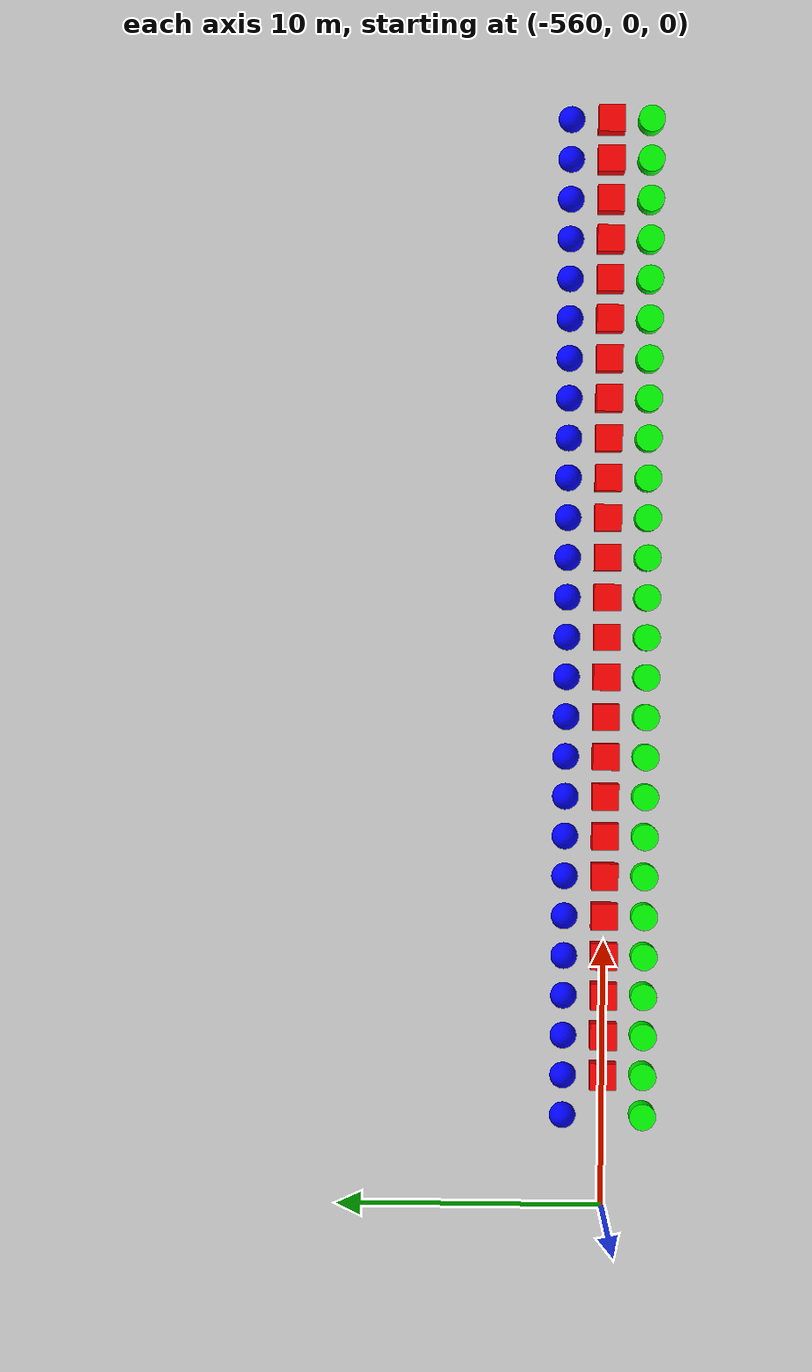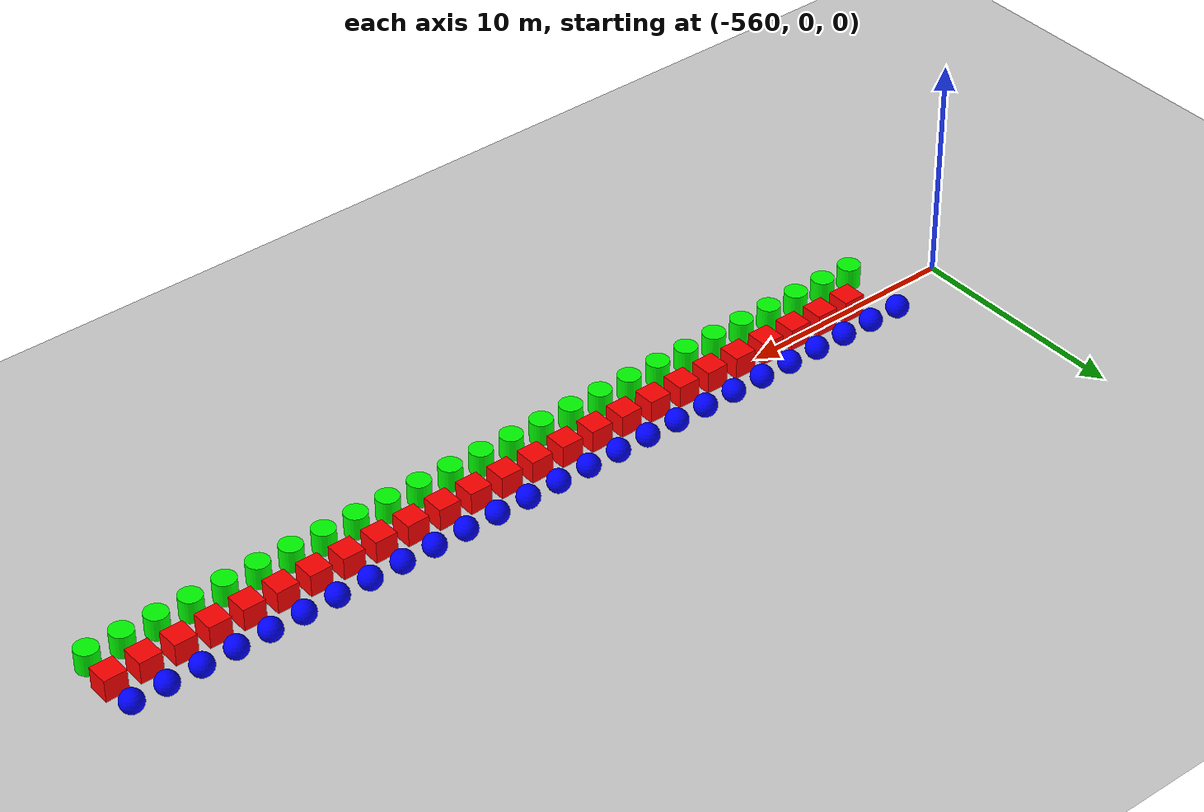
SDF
<sdf version="1.6">
 <world name="shapes">
  <model name="ground_plane">
   <static>true</static>
   <link name="link">
    <collision name="collision">
     <geometry><plane><normal>0 0 1</normal><size>100 100</size></plane></geometry>
    </collision>
    <visual name="visual">
     <geometry><plane><normal>0 0 1</normal><size>100 100</size></plane></geometry>
     <material>
      <ambient>0.8 0.8 0.8 1</ambient>
      <diffuse>0.8 0.8 0.8 1</diffuse>
      <specular>0.8 0.8 0.8 1</specular>
     </material>
    </visual>
   </link>
  </model>
  <model name="cylinder_129">
   <static>false</static>
   <pose>-556.5 -1.5 0.5 0 0 0</pose>
   <link name="cylinder_link">
    <inertial>
     <inertia><ixx>2</ixx><ixy>0</ixy><ixz>0</ixz><iyy>2</iyy><iyz>0</iyz><izz>2</izz></inertia>
     <mass>2.0</mass>
    </inertial>
    <collision name="cylinder_collision">
     <geometry><cylinder><radius>0.5</radius><length>1.0</length></cylinder></geometry>
    </collision>
    <visual name="cylinder_visual">
     <geometry><cylinder><radius>0.5</radius><length>1.0</length></cylinder></geometry>
     <material><ambient>0 1 0 1</ambient><diffuse>0 1 0 1</diffuse><specular>0 1 0 1</specular></material>
    </visual>
   </link>
  </model>
  <model name="sphere_129">
   <static>false</static>
   <pose>-556.5 1.5 0.5 0 0 0</pose>
   <link name="sphere_link">
    <inertial>
     <inertia><ixx>3</ixx><ixy>0</ixy><ixz>0</ixz><iyy>3</iyy><iyz>0</iyz><izz>3</izz></inertia>
     <mass>3.0</mass>
    </inertial>
    <collision name="sphere_collision"><geometry><sphere><radius>0.5</radius></sphere></geometry></collision>
    <visual name="sphere_visual">
     <geometry><sphere><radius>0.5</radius></sphere></geometry>
     <material><ambient>0 0 1 1</ambient><diffuse>0 0 1 1</diffuse><specular>0 0 1 1</specular></material>
    </visual>
   </link>
  </model>
  <model name="box_130">
   <static>false</static>
   <pose>-555.0 0 0.5 0 0 0</pose>
   <link name="box_link">
    <inertial>
     <inertia><ixx>1</ixx><ixy>0</ixy><ixz>0</ixz><iyy>1</iyy><iyz>0</iyz><izz>1</izz></inertia>
     <mass>1.0</mass>
    </inertial>
    <collision name="box_collision"><geometry><box><size>1 1 1</size></box></geometry></collision>
    <visual name="box_visual">
     <geometry><box><size>1 1 1</size></box></geometry>
     <material><ambient>1 0 0 1</ambient><diffuse>1 0 0 1</diffuse><specular>1 0 0 1</specular></material>
    </visual>
   </link>
  </model>
  <model name="cylinder_130">
   <static>false</static>
   <pose>-555.0 -1.5 0.5 0 0 0</pose>
   <link name="cylinder_link">
    <inertial>
     <inertia><ixx>2</ixx><ixy>0</ixy><ixz>0</ixz><iyy>2</iyy><iyz>0</iyz><izz>2</izz></inertia>
     <mass>2.0</mass>
    </inertial>
    <collision name="cylinder_collision">
     <geometry><cylinder><radius>0.5</radius><length>1.0</length></cylinder></geometry>
    </collision>
    <visual name="cylinder_visual">
     <geometry><cylinder><radius>0.5</radius><length>1.0</length></cylinder></geometry>
     <material><ambient>0 1 0 1</ambient><diffuse>0 1 0 1</diffuse><specular>0 1 0 1</specular></material>
    </visual>
   </link>
  </model>
  <model name="sphere_130">
   <static>false</static>
   <pose>-555.0 1.5 0.5 0 0 0</pose>
   <link name="sphere_link">
    <inertial>
     <inertia><ixx>3</ixx><ixy>0</ixy><ixz>0</ixz><iyy>3</iyy><iyz>0</iyz><izz>3</izz></inertia>
     <mass>3.0</mass>
    </inertial>
    <collision name="sphere_collision"><geometry><sphere><radius>0.5</radius></sphere></geometry></collision>
    <visual name="sphere_visual">
     <geometry><sphere><radius>0.5</radius></sphere></geometry>
     <material><ambient>0 0 1 1</ambient><diffuse>0 0 1 1</diffuse><specular>0 0 1 1</specular></material>
    </visual>
   </link>
  </model>
  <model name="box_131">
   <static>false</static>
   <pose>-553.5 0 0.5 0 0 0</pose>
   <link name="box_link">
    <inertial>
     <inertia><ixx>1</ixx><ixy>0</ixy><ixz>0</ixz><iyy>1</iyy><iyz>0</iyz><izz>1</izz></inertia>
     <mass>1.0</mass>
    </inertial>
    <collision name="box_collision"><geometry><box><size>1 1 1</size></box></geometry></collision>
    <visual name="box_visual">
     <geometry><box><size>1 1 1</size></box></geometry>
     <material><ambient>1 0 0 1</ambient><diffuse>1 0 0 1</diffuse><specular>1 0 0 1</specular></material>
    </visual>
   </link>
  </model>
  <model name="cylinder_131">
   <static>false</static>
   <pose>-553.5 -1.5 0.5 0 0 0</pose>
   <link name="cylinder_link">
    <inertial>
     <inertia><ixx>2</ixx><ixy>0</ixy><ixz>0</ixz><iyy>2</iyy><iyz>0</iyz><izz>2</izz></inertia>
     <mass>2.0</mass>
    </inertial>
    <collision name="cylinder_collision">
     <geometry><cylinder><radius>0.5</radius><length>1.0</length></cylinder></geometry>
    </collision>
    <visual name="cylinder_visual">
     <geometry><cylinder><radius>0.5</radius><length>1.0</length></cylinder></geometry>
     <material><ambient>0 1 0 1</ambient><diffuse>0 1 0 1</diffuse><specular>0 1 0 1</specular></material>
    </visual>
   </link>
  </model>
  <model name="sphere_131">
   <static>false</static>
   <pose>-553.5 1.5 0.5 0 0 0</pose>
   <link name="sphere_link">
    <inertial>
     <inertia><ixx>3</ixx><ixy>0</ixy><ixz>0</ixz><iyy>3</iyy><iyz>0</iyz><izz>3</izz></inertia>
     <mass>3.0</mass>
    </inertial>
    <collision name="sphere_collision"><geometry><sphere><radius>0.5</radius></sphere></geometry></collision>
    <visual name="sphere_visual">
     <geometry><sphere><radius>0.5</radius></sphere></geometry>
     <material><ambient>0 0 1 1</ambient><diffuse>0 0 1 1</diffuse><specular>0 0 1 1</specular></material>
    </visual>
   </link>
  </model>
  <model name="box_132">
   <static>false</static>
   <pose>-552.0 0 0.5 0 0 0</pose>
   <link name="box_link">
    <inertial>
     <inertia><ixx>1</ixx><ixy>0</ixy><ixz>0</ixz><iyy>1</iyy><iyz>0</iyz><izz>1</izz></inertia>
     <mass>1.0</mass>
    </inertial>
    <collision name="box_collision"><geometry><box><size>1 1 1</size></box></geometry></collision>
    <visual name="box_visual">
     <geometry><box><size>1 1 1</size></box></geometry>
     <material><ambient>1 0 0 1</ambient><diffuse>1 0 0 1</diffuse><specular>1 0 0 1</specular></material>
    </visual>
   </link>
  </model>
  <model name="cylinder_132">
   <static>false</static>
   <pose>-552.0 -1.5 0.5 0 0 0</pose>
   <link name="cylinder_link">
    <inertial>
     <inertia><ixx>2</ixx><ixy>0</ixy><ixz>0</ixz><iyy>2</iyy><iyz>0</iyz><izz>2</izz></inertia>
     <mass>2.0</mass>
    </inertial>
    <collision name="cylinder_collision">
     <geometry><cylinder><radius>0.5</radius><length>1.0</length></cylinder></geometry>
    </collision>
    <visual name="cylinder_visual">
     <geometry><cylinder><radius>0.5</radius><length>1.0</length></cylinder></geometry>
     <material><ambient>0 1 0 1</ambient><diffuse>0 1 0 1</diffuse><specular>0 1 0 1</specular></material>
    </visual>
   </link>
  </model>
  <model name="sphere_132">
   <static>false</static>
   <pose>-552.0 1.5 0.5 0 0 0</pose>
   <link name="sphere_link">
    <inertial>
     <inertia><ixx>3</ixx><ixy>0</ixy><ixz>0</ixz><iyy>3</iyy><iyz>0</iyz><izz>3</izz></inertia>
     <mass>3.0</mass>
    </inertial>
    <collision name="sphere_collision"><geometry><sphere><radius>0.5</radius></sphere></geometry></collision>
    <visual name="sphere_visual">
     <geometry><sphere><radius>0.5</radius></sphere></geometry>
     <material><ambient>0 0 1 1</ambient><diffuse>0 0 1 1</diffuse><specular>0 0 1 1</specular></material>
    </visual>
   </link>
  </model>
  <model name="box_133">
   <static>false</static>
   <pose>-550.5 0 0.5 0 0 0</pose>
   <link name="box_link">
    <inertial>
     <inertia><ixx>1</ixx><ixy>0</ixy><ixz>0</ixz><iyy>1</iyy><iyz>0</iyz><izz>1</izz></inertia>
     <mass>1.0</mass>
    </inertial>
    <collision name="box_collision"><geometry><box><size>1 1 1</size></box></geometry></collision>
    <visual name="box_visual">
     <geometry><box><size>1 1 1</size></box></geometry>
     <material><ambient>1 0 0 1</ambient><diffuse>1 0 0 1</diffuse><specular>1 0 0 1</specular></material>
    </visual>
   </link>
  </model>
  <model name="cylinder_133">
   <static>false</static>
   <pose>-550.5 -1.5 0.5 0 0 0</pose>
   <link name="cylinder_link">
    <inertial>
     <inertia><ixx>2</ixx><ixy>0</ixy><ixz>0</ixz><iyy>2</iyy><iyz>0</iyz><izz>2</izz></inertia>
     <mass>2.0</mass>
    </inertial>
    <collision name="cylinder_collision">
     <geometry><cylinder><radius>0.5</radius><length>1.0</length></cylinder></geometry>
    </collision>
    <visual name="cylinder_visual">
     <geometry><cylinder><radius>0.5</radius><length>1.0</length></cylinder></geometry>
     <material><ambient>0 1 0 1</ambient><diffuse>0 1 0 1</diffuse><specular>0 1 0 1</specular></material>
    </visual>
   </link>
  </model>
  <model name="sphere_133">
   <static>false</static>
   <pose>-550.5 1.5 0.5 0 0 0</pose>
   <link name="sphere_link">
    <inertial>
     <inertia><ixx>3</ixx><ixy>0</ixy><ixz>0</ixz><iyy>3</iyy><iyz>0</iyz><izz>3</izz></inertia>
     <mass>3.0</mass>
    </inertial>
    <collision name="sphere_collision"><geometry><sphere><radius>0.5</radius></sphere></geometry></collision>
    <visual name="sphere_visual">
     <geometry><sphere><radius>0.5</radius></sphere></geometry>
     <material><ambient>0 0 1 1</ambient><diffuse>0 0 1 1</diffuse><specular>0 0 1 1</specular></material>
    </visual>
   </link>
  </model>
  <model name="box_134">
   <static>false</static>
   <pose>-549.0 0 0.5 0 0 0</pose>
   <link name="box_link">
    <inertial>
     <inertia><ixx>1</ixx><ixy>0</ixy><ixz>0</ixz><iyy>1</iyy><iyz>0</iyz><izz>1</izz></inertia>
     <mass>1.0</mass>
    </inertial>
    <collision name="box_collision"><geometry><box><size>1 1 1</size></box></geometry></collision>
    <visual name="box_visual">
     <geometry><box><size>1 1 1</size></box></geometry>
     <material><ambient>1 0 0 1</ambient><diffuse>1 0 0 1</diffuse><specular>1 0 0 1</specular></material>
    </visual>
   </link>
  </model>
  <model name="cylinder_134">
   <static>false</static>
   <pose>-549.0 -1.5 0.5 0 0 0</pose>
   <link name="cylinder_link">
    <inertial>
     <inertia><ixx>2</ixx><ixy>0</ixy><ixz>0</ixz><iyy>2</iyy><iyz>0</iyz><izz>2</izz></inertia>
     <mass>2.0</mass>
    </inertial>
    <collision name="cylinder_collision">
     <geometry><cylinder><radius>0.5</radius><length>1.0</length></cylinder></geometry>
    </collision>
    <visual name="cylinder_visual">
     <geometry><cylinder><radius>0.5</radius><length>1.0</length></cylinder></geometry>
     <material><ambient>0 1 0 1</ambient><diffuse>0 1 0 1</diffuse><specular>0 1 0 1</specular></material>
    </visual>
   </link>
  </model>
  <model name="sphere_134">
   <static>false</static>
   <pose>-549.0 1.5 0.5 0 0 0</pose>
   <link name="sphere_link">
    <inertial>
     <inertia><ixx>3</ixx><ixy>0</ixy><ixz>0</ixz><iyy>3</iyy><iyz>0</iyz><izz>3</izz></inertia>
     <mass>3.0</mass>
    </inertial>
    <collision name="sphere_collision"><geometry><sphere><radius>0.5</radius></sphere></geometry></collision>
    <visual name="sphere_visual">
     <geometry><sphere><radius>0.5</radius></sphere></geometry>
     <material><ambient>0 0 1 1</ambient><diffuse>0 0 1 1</diffuse><specular>0 0 1 1</specular></material>
    </visual>
   </link>
  </model>
  <model name="box_135">
   <static>false</static>
   <pose>-547.5 0 0.5 0 0 0</pose>
   <link name="box_link">
    <inertial>
     <inertia><ixx>1</ixx><ixy>0</ixy><ixz>0</ixz><iyy>1</iyy><iyz>0</iyz><izz>1</izz></inertia>
     <mass>1.0</mass>
    </inertial>
    <collision name="box_collision"><geometry><box><size>1 1 1</size></box></geometry></collision>
    <visual name="box_visual">
     <geometry><box><size>1 1 1</size></box></geometry>
     <material><ambient>1 0 0 1</ambient><diffuse>1 0 0 1</diffuse><specular>1 0 0 1</specular></material>
    </visual>
   </link>
  </model>
  <model name="cylinder_135">
   <static>false</static>
   <pose>-547.5 -1.5 0.5 0 0 0</pose>
   <link name="cylinder_link">
    <inertial>
     <inertia><ixx>2</ixx><ixy>0</ixy><ixz>0</ixz><iyy>2</iyy><iyz>0</iyz><izz>2</izz></inertia>
     <mass>2.0</mass>
    </inertial>
    <collision name="cylinder_collision">
     <geometry><cylinder><radius>0.5</radius><length>1.0</length></cylinder></geometry>
    </collision>
    <visual name="cylinder_visual">
     <geometry><cylinder><radius>0.5</radius><length>1.0</length></cylinder></geometry>
     <material><ambient>0 1 0 1</ambient><diffuse>0 1 0 1</diffuse><specular>0 1 0 1</specular></material>
    </visual>
   </link>
  </model>
  <model name="sphere_135">
   <static>false</static>
   <pose>-547.5 1.5 0.5 0 0 0</pose>
   <link name="sphere_link">
    <inertial>
     <inertia><ixx>3</ixx><ixy>0</ixy><ixz>0</ixz><iyy>3</iyy><iyz>0</iyz><izz>3</izz></inertia>
     <mass>3.0</mass>
    </inertial>
    <collision name="sphere_collision"><geometry><sphere><radius>0.5</radius></sphere></geometry></collision>
    <visual name="sphere_visual">
     <geometry><sphere><radius>0.5</radius></sphere></geometry>
     <material><ambient>0 0 1 1</ambient><diffuse>0 0 1 1</diffuse><specular>0 0 1 1</specular></material>
    </visual>
   </link>
  </model>
  <model name="box_136">
   <static>false</static>
   <pose>-546.0 0 0.5 0 0 0</pose>
   <link name="box_link">
    <inertial>
     <inertia><ixx>1</ixx><ixy>0</ixy><ixz>0</ixz><iyy>1</iyy><iyz>0</iyz><izz>1</izz></inertia>
     <mass>1.0</mass>
    </inertial>
    <collision name="box_collision"><geometry><box><size>1 1 1</size></box></geometry></collision>
    <visual name="box_visual">
     <geometry><box><size>1 1 1</size></box></geometry>
     <material><ambient>1 0 0 1</ambient><diffuse>1 0 0 1</diffuse><specular>1 0 0 1</specular></material>
    </visual>
   </link>
  </model>
  <model name="cylinder_136">
   <static>false</static>
   <pose>-546.0 -1.5 0.5 0 0 0</pose>
   <link name="cylinder_link">
    <inertial>
     <inertia><ixx>2</ixx><ixy>0</ixy><ixz>0</ixz><iyy>2</iyy><iyz>0</iyz><izz>2</izz></inertia>
     <mass>2.0</mass>
    </inertial>
    <collision name="cylinder_collision">
     <geometry><cylinder><radius>0.5</radius><length>1.0</length></cylinder></geometry>
    </collision>
    <visual name="cylinder_visual">
     <geometry><cylinder><radius>0.5</radius><length>1.0</length></cylinder></geometry>
     <material><ambient>0 1 0 1</ambient><diffuse>0 1 0 1</diffuse><specular>0 1 0 1</specular></material>
    </visual>
   </link>
  </model>
  <model name="sphere_136">
   <static>false</static>
   <pose>-546.0 1.5 0.5 0 0 0</pose>
   <link name="sphere_link">
    <inertial>
     <inertia><ixx>3</ixx><ixy>0</ixy><ixz>0</ixz><iyy>3</iyy><iyz>0</iyz><izz>3</izz></inertia>
     <mass>3.0</mass>
    </inertial>
    <collision name="sphere_collision"><geometry><sphere><radius>0.5</radius></sphere></geometry></collision>
    <visual name="sphere_visual">
     <geometry><sphere><radius>0.5</radius></sphere></geometry>
     <material><ambient>0 0 1 1</ambient><diffuse>0 0 1 1</diffuse><specular>0 0 1 1</specular></material>
    </visual>
   </link>
  </model>
  <model name="box_137">
   <static>false</static>
   <pose>-544.5 0 0.5 0 0 0</pose>
   <link name="box_link">
    <inertial>
     <inertia><ixx>1</ixx><ixy>0</ixy><ixz>0</ixz><iyy>1</iyy><iyz>0</iyz><izz>1</izz></inertia>
     <mass>1.0</mass>
    </inertial>
    <collision name="box_collision"><geometry><box><size>1 1 1</size></box></geometry></collision>
    <visual name="box_visual">
     <geometry><box><size>1 1 1</size></box></geometry>
     <material><ambient>1 0 0 1</ambient><diffuse>1 0 0 1</diffuse><specular>1 0 0 1</specular></material>
    </visual>
   </link>
  </model>
  <model name="cylinder_137">
   <static>false</static>
   <pose>-544.5 -1.5 0.5 0 0 0</pose>
   <link name="cylinder_link">
    <inertial>
     <inertia><ixx>2</ixx><ixy>0</ixy><ixz>0</ixz><iyy>2</iyy><iyz>0</iyz><izz>2</izz></inertia>
     <mass>2.0</mass>
    </inertial>
    <collision name="cylinder_collision">
     <geometry><cylinder><radius>0.5</radius><length>1.0</length></cylinder></geometry>
    </collision>
    <visual name="cylinder_visual">
     <geometry><cylinder><radius>0.5</radius><length>1.0</length></cylinder></geometry>
     <material><ambient>0 1 0 1</ambient><diffuse>0 1 0 1</diffuse><specular>0 1 0 1</specular></material>
    </visual>
   </link>
  </model>
  <model name="sphere_137">
   <static>false</static>
   <pose>-544.5 1.5 0.5 0 0 0</pose>
   <link name="sphere_link">
    <inertial>
     <inertia><ixx>3</ixx><ixy>0</ixy><ixz>0</ixz><iyy>3</iyy><iyz>0</iyz><izz>3</izz></inertia>
     <mass>3.0</mass>
    </inertial>
    <collision name="sphere_collision"><geometry><sphere><radius>0.5</radius></sphere></geometry></collision>
    <visual name="sphere_visual">
     <geometry><sphere><radius>0.5</radius></sphere></geometry>
     <material><ambient>0 0 1 1</ambient><diffuse>0 0 1 1</diffuse><specular>0 0 1 1</specular></material>
    </visual>
   </link>
  </model>
  <model name="box_138">
   <static>false</static>
   <pose>-543.0 0 0.5 0 0 0</pose>
   <link name="box_link">
    <inertial>
     <inertia><ixx>1</ixx><ixy>0</ixy><ixz>0</ixz><iyy>1</iyy><iyz>0</iyz><izz>1</izz></inertia>
     <mass>1.0</mass>
    </inertial>
    <collision name="box_collision"><geometry><box><size>1 1 1</size></box></geometry></collision>
    <visual name="box_visual">
     <geometry><box><size>1 1 1</size></box></geometry>
     <material><ambient>1 0 0 1</ambient><diffuse>1 0 0 1</diffuse><specular>1 0 0 1</specular></material>
    </visual>
   </link>
  </model>
  <model name="cylinder_138">
   <static>false</static>
   <pose>-543.0 -1.5 0.5 0 0 0</pose>
   <link name="cylinder_link">
    <inertial>
     <inertia><ixx>2</ixx><ixy>0</ixy><ixz>0</ixz><iyy>2</iyy><iyz>0</iyz><izz>2</izz></inertia>
     <mass>2.0</mass>
    </inertial>
    <collision name="cylinder_collision">
     <geometry><cylinder><radius>0.5</radius><length>1.0</length></cylinder></geometry>
    </collision>
    <visual name="cylinder_visual">
     <geometry><cylinder><radius>0.5</radius><length>1.0</length></cylinder></geometry>
     <material><ambient>0 1 0 1</ambient><diffuse>0 1 0 1</diffuse><specular>0 1 0 1</specular></material>
    </visual>
   </link>
  </model>
  <model name="sphere_138">
   <static>false</static>
   <pose>-543.0 1.5 0.5 0 0 0</pose>
   <link name="sphere_link">
    <inertial>
     <inertia><ixx>3</ixx><ixy>0</ixy><ixz>0</ixz><iyy>3</iyy><iyz>0</iyz><izz>3</izz></inertia>
     <mass>3.0</mass>
    </inertial>
    <collision name="sphere_collision"><geometry><sphere><radius>0.5</radius></sphere></geometry></collision>
    <visual name="sphere_visual">
     <geometry><sphere><radius>0.5</radius></sphere></geometry>
     <material><ambient>0 0 1 1</ambient><diffuse>0 0 1 1</diffuse><specular>0 0 1 1</specular></material>
    </visual>
   </link>
  </model>
  <model name="box_139">
   <static>false</static>
   <pose>-541.5 0 0.5 0 0 0</pose>
   <link name="box_link">
    <inertial>
     <inertia><ixx>1</ixx><ixy>0</ixy><ixz>0</ixz><iyy>1</iyy><iyz>0</iyz><izz>1</izz></inertia>
     <mass>1.0</mass>
    </inertial>
    <collision name="box_collision"><geometry><box><size>1 1 1</size></box></geometry></collision>
    <visual name="box_visual">
     <geometry><box><size>1 1 1</size></box></geometry>
     <material><ambient>1 0 0 1</ambient><diffuse>1 0 0 1</diffuse><specular>1 0 0 1</specular></material>
    </visual>
   </link>
  </model>
  <model name="cylinder_139">
   <static>false</static>
   <pose>-541.5 -1.5 0.5 0 0 0</pose>
   <link name="cylinder_link">
    <inertial>
     <inertia><ixx>2</ixx><ixy>0</ixy><ixz>0</ixz><iyy>2</iyy><iyz>0</iyz><izz>2</izz></inertia>
     <mass>2.0</mass>
    </inertial>
    <collision name="cylinder_collision">
     <geometry><cylinder><radius>0.5</radius><length>1.0</length></cylinder></geometry>
    </collision>
    <visual name="cylinder_visual">
     <geometry><cylinder><radius>0.5</radius><length>1.0</length></cylinder></geometry>
     <material><ambient>0 1 0 1</ambient><diffuse>0 1 0 1</diffuse><specular>0 1 0 1</specular></material>
    </visual>
   </link>
  </model>
  <model name="sphere_139">
   <static>false</static>
   <pose>-541.5 1.5 0.5 0 0 0</pose>
   <link name="sphere_link">
    <inertial>
     <inertia><ixx>3</ixx><ixy>0</ixy><ixz>0</ixz><iyy>3</iyy><iyz>0</iyz><izz>3</izz></inertia>
     <mass>3.0</mass>
    </inertial>
    <collision name="sphere_collision"><geometry><sphere><radius>0.5</radius></sphere></geometry></collision>
    <visual name="sphere_visual">
     <geometry><sphere><radius>0.5</radius></sphere></geometry>
     <material><ambient>0 0 1 1</ambient><diffuse>0 0 1 1</diffuse><specular>0 0 1 1</specular></material>
    </visual>
   </link>
  </model>
  <model name="box_140">
   <static>false</static>
   <pose>-540.0 0 0.5 0 0 0</pose>
   <link name="box_link">
    <inertial>
     <inertia><ixx>1</ixx><ixy>0</ixy><ixz>0</ixz><iyy>1</iyy><iyz>0</iyz><izz>1</izz></inertia>
     <mass>1.0</mass>
    </inertial>
    <collision name="box_collision"><geometry><box><size>1 1 1</size></box></geometry></collision>
    <visual name="box_visual">
     <geometry><box><size>1 1 1</size></box></geometry>
     <material><ambient>1 0 0 1</ambient><diffuse>1 0 0 1</diffuse><specular>1 0 0 1</specular></material>
    </visual>
   </link>
  </model>
  <model name="cylinder_140">
   <static>false</static>
   <pose>-540.0 -1.5 0.5 0 0 0</pose>
   <link name="cylinder_link">
    <inertial>
     <inertia><ixx>2</ixx><ixy>0</ixy><ixz>0</ixz><iyy>2</iyy><iyz>0</iyz><izz>2</izz></inertia>
     <mass>2.0</mass>
    </inertial>
    <collision name="cylinder_collision">
     <geometry><cylinder><radius>0.5</radius><length>1.0</length></cylinder></geometry>
    </collision>
    <visual name="cylinder_visual">
     <geometry><cylinder><radius>0.5</radius><length>1.0</length></cylinder></geometry>
     <material><ambient>0 1 0 1</ambient><diffuse>0 1 0 1</diffuse><specular>0 1 0 1</specular></material>
    </visual>
   </link>
  </model>
  <model name="sphere_140">
   <static>false</static>
   <pose>-540.0 1.5 0.5 0 0 0</pose>
   <link name="sphere_link">
    <inertial>
     <inertia><ixx>3</ixx><ixy>0</ixy><ixz>0</ixz><iyy>3</iyy><iyz>0</iyz><izz>3</izz></inertia>
     <mass>3.0</mass>
    </inertial>
    <collision name="sphere_collision"><geometry><sphere><radius>0.5</radius></sphere></geometry></collision>
    <visual name="sphere_visual">
     <geometry><sphere><radius>0.5</radius></sphere></geometry>
     <material><ambient>0 0 1 1</ambient><diffuse>0 0 1 1</diffuse><specular>0 0 1 1</specular></material>
    </visual>
   </link>
  </model>
  <model name="box_141">
   <static>false</static>
   <pose>-538.5 0 0.5 0 0 0</pose>
   <link name="box_link">
    <inertial>
     <inertia><ixx>1</ixx><ixy>0</ixy><ixz>0</ixz><iyy>1</iyy><iyz>0</iyz><izz>1</izz></inertia>
     <mass>1.0</mass>
    </inertial>
    <collision name="box_collision"><geometry><box><size>1 1 1</size></box></geometry></collision>
    <visual name="box_visual">
     <geometry><box><size>1 1 1</size></box></geometry>
     <material><ambient>1 0 0 1</ambient><diffuse>1 0 0 1</diffuse><specular>1 0 0 1</specular></material>
    </visual>
   </link>
  </model>
  <model name="cylinder_141">
   <static>false</static>
   <pose>-538.5 -1.5 0.5 0 0 0</pose>
   <link name="cylinder_link">
    <inertial>
     <inertia><ixx>2</ixx><ixy>0</ixy><ixz>0</ixz><iyy>2</iyy><iyz>0</iyz><izz>2</izz></inertia>
     <mass>2.0</mass>
    </inertial>
    <collision name="cylinder_collision">
     <geometry><cylinder><radius>0.5</radius><length>1.0</length></cylinder></geometry>
    </collision>
    <visual name="cylinder_visual">
     <geometry><cylinder><radius>0.5</radius><length>1.0</length></cylinder></geometry>
     <material><ambient>0 1 0 1</ambient><diffuse>0 1 0 1</diffuse><specular>0 1 0 1</specular></material>
    </visual>
   </link>
  </model>
  <model name="sphere_141">
   <static>false</static>
   <pose>-538.5 1.5 0.5 0 0 0</pose>
   <link name="sphere_link">
    <inertial>
     <inertia><ixx>3</ixx><ixy>0</ixy><ixz>0</ixz><iyy>3</iyy><iyz>0</iyz><izz>3</izz></inertia>
     <mass>3.0</mass>
    </inertial>
    <collision name="sphere_collision"><geometry><sphere><radius>0.5</radius></sphere></geometry></collision>
    <visual name="sphere_visual">
     <geometry><sphere><radius>0.5</radius></sphere></geometry>
     <material><ambient>0 0 1 1</ambient><diffuse>0 0 1 1</diffuse><specular>0 0 1 1</specular></material>
    </visual>
   </link>
  </model>
  <model name="box_142">
   <static>false</static>
   <pose>-537.0 0 0.5 0 0 0</pose>
   <link name="box_link">
    <inertial>
     <inertia><ixx>1</ixx><ixy>0</ixy><ixz>0</ixz><iyy>1</iyy><iyz>0</iyz><izz>1</izz></inertia>
     <mass>1.0</mass>
    </inertial>
    <collision name="box_collision"><geometry><box><size>1 1 1</size></box></geometry></collision>
    <visual name="box_visual">
     <geometry><box><size>1 1 1</size></box></geometry>
     <material><ambient>1 0 0 1</ambient><diffuse>1 0 0 1</diffuse><specular>1 0 0 1</specular></material>
    </visual>
   </link>
  </model>
  <model name="cylinder_142">
   <static>false</static>
   <pose>-537.0 -1.5 0.5 0 0 0</pose>
   <link name="cylinder_link">
    <inertial>
     <inertia><ixx>2</ixx><ixy>0</ixy><ixz>0</ixz><iyy>2</iyy><iyz>0</iyz><izz>2</izz></inertia>
     <mass>2.0</mass>
    </inertial>
    <collision name="cylinder_collision">
     <geometry><cylinder><radius>0.5</radius><length>1.0</length></cylinder></geometry>
    </collision>
    <visual name="cylinder_visual">
     <geometry><cylinder><radius>0.5</radius><length>1.0</length></cylinder></geometry>
     <material><ambient>0 1 0 1</ambient><diffuse>0 1 0 1</diffuse><specular>0 1 0 1</specular></material>
    </visual>
   </link>
  </model>
  <model name="sphere_142">
   <static>false</static>
   <pose>-537.0 1.5 0.5 0 0 0</pose>
   <link name="sphere_link">
    <inertial>
     <inertia><ixx>3</ixx><ixy>0</ixy><ixz>0</ixz><iyy>3</iyy><iyz>0</iyz><izz>3</izz></inertia>
     <mass>3.0</mass>
    </inertial>
    <collision name="sphere_collision"><geometry><sphere><radius>0.5</radius></sphere></geometry></collision>
    <visual name="sphere_visual">
     <geometry><sphere><radius>0.5</radius></sphere></geometry>
     <material><ambient>0 0 1 1</ambient><diffuse>0 0 1 1</diffuse><specular>0 0 1 1</specular></material>
    </visual>
   </link>
  </model>
  <model name="box_143">
   <static>false</static>
   <pose>-535.5 0 0.5 0 0 0</pose>
   <link name="box_link">
    <inertial>
     <inertia><ixx>1</ixx><ixy>0</ixy><ixz>0</ixz><iyy>1</iyy><iyz>0</iyz><izz>1</izz></inertia>
     <mass>1.0</mass>
    </inertial>
    <collision name="box_collision"><geometry><box><size>1 1 1</size></box></geometry></collision>
    <visual name="box_visual">
     <geometry><box><size>1 1 1</size></box></geometry>
     <material><ambient>1 0 0 1</ambient><diffuse>1 0 0 1</diffuse><specular>1 0 0 1</specular></material>
    </visual>
   </link>
  </model>
  <model name="cylinder_143">
   <static>false</static>
   <pose>-535.5 -1.5 0.5 0 0 0</pose>
   <link name="cylinder_link">
    <inertial>
     <inertia><ixx>2</ixx><ixy>0</ixy><ixz>0</ixz><iyy>2</iyy><iyz>0</iyz><izz>2</izz></inertia>
     <mass>2.0</mass>
    </inertial>
    <collision name="cylinder_collision">
     <geometry><cylinder><radius>0.5</radius><length>1.0</length></cylinder></geometry>
    </collision>
    <visual name="cylinder_visual">
     <geometry><cylinder><radius>0.5</radius><length>1.0</length></cylinder></geometry>
     <material><ambient>0 1 0 1</ambient><diffuse>0 1 0 1</diffuse><specular>0 1 0 1</specular></material>
    </visual>
   </link>
  </model>
  <model name="sphere_143">
   <static>false</static>
   <pose>-535.5 1.5 0.5 0 0 0</pose>
   <link name="sphere_link">
    <inertial>
     <inertia><ixx>3</ixx><ixy>0</ixy><ixz>0</ixz><iyy>3</iyy><iyz>0</iyz><izz>3</izz></inertia>
     <mass>3.0</mass>
    </inertial>
    <collision name="sphere_collision"><geometry><sphere><radius>0.5</radius></sphere></geometry></collision>
    <visual name="sphere_visual">
     <geometry><sphere><radius>0.5</radius></sphere></geometry>
     <material><ambient>0 0 1 1</ambient><diffuse>0 0 1 1</diffuse><specular>0 0 1 1</specular></material>
    </visual>
   </link>
  </model>
  <model name="box_144">
   <static>false</static>
   <pose>-534.0 0 0.5 0 0 0</pose>
   <link name="box_link">
    <inertial>
     <inertia><ixx>1</ixx><ixy>0</ixy><ixz>0</ixz><iyy>1</iyy><iyz>0</iyz><izz>1</izz></inertia>
     <mass>1.0</mass>
    </inertial>
    <collision name="box_collision"><geometry><box><size>1 1 1</size></box></geometry></collision>
    <visual name="box_visual">
     <geometry><box><size>1 1 1</size></box></geometry>
     <material><ambient>1 0 0 1</ambient><diffuse>1 0 0 1</diffuse><specular>1 0 0 1</specular></material>
    </visual>
   </link>
  </model>
  <model name="cylinder_144">
   <static>false</static>
   <pose>-534.0 -1.5 0.5 0 0 0</pose>
   <link name="cylinder_link">
    <inertial>
     <inertia><ixx>2</ixx><ixy>0</ixy><ixz>0</ixz><iyy>2</iyy><iyz>0</iyz><izz>2</izz></inertia>
     <mass>2.0</mass>
    </inertial>
    <collision name="cylinder_collision">
     <geometry><cylinder><radius>0.5</radius><length>1.0</length></cylinder></geometry>
    </collision>
    <visual name="cylinder_visual">
     <geometry><cylinder><radius>0.5</radius><length>1.0</length></cylinder></geometry>
     <material><ambient>0 1 0 1</ambient><diffuse>0 1 0 1</diffuse><specular>0 1 0 1</specular></material>
    </visual>
   </link>
  </model>
  <model name="sphere_144">
   <static>false</static>
   <pose>-534.0 1.5 0.5 0 0 0</pose>
   <link name="sphere_link">
    <inertial>
     <inertia><ixx>3</ixx><ixy>0</ixy><ixz>0</ixz><iyy>3</iyy><iyz>0</iyz><izz>3</izz></inertia>
     <mass>3.0</mass>
    </inertial>
    <collision name="sphere_collision"><geometry><sphere><radius>0.5</radius></sphere></geometry></collision>
    <visual name="sphere_visual">
     <geometry><sphere><radius>0.5</radius></sphere></geometry>
     <material><ambient>0 0 1 1</ambient><diffuse>0 0 1 1</diffuse><specular>0 0 1 1</specular></material>
    </visual>
   </link>
  </model>
  <model name="box_145">
   <static>false</static>
   <pose>-532.5 0 0.5 0 0 0</pose>
   <link name="box_link">
    <inertial>
     <inertia><ixx>1</ixx><ixy>0</ixy><ixz>0</ixz><iyy>1</iyy><iyz>0</iyz><izz>1</izz></inertia>
     <mass>1.0</mass>
    </inertial>
    <collision name="box_collision"><geometry><box><size>1 1 1</size></box></geometry></collision>
    <visual name="box_visual">
     <geometry><box><size>1 1 1</size></box></geometry>
     <material><ambient>1 0 0 1</ambient><diffuse>1 0 0 1</diffuse><specular>1 0 0 1</specular></material>
    </visual>
   </link>
  </model>
  <model name="cylinder_145">
   <static>false</static>
   <pose>-532.5 -1.5 0.5 0 0 0</pose>
   <link name="cylinder_link">
    <inertial>
     <inertia><ixx>2</ixx><ixy>0</ixy><ixz>0</ixz><iyy>2</iyy><iyz>0</iyz><izz>2</izz></inertia>
     <mass>2.0</mass>
    </inertial>
    <collision name="cylinder_collision">
     <geometry><cylinder><radius>0.5</radius><length>1.0</length></cylinder></geometry>
    </collision>
    <visual name="cylinder_visual">
     <geometry><cylinder><radius>0.5</radius><length>1.0</length></cylinder></geometry>
     <material><ambient>0 1 0 1</ambient><diffuse>0 1 0 1</diffuse><specular>0 1 0 1</specular></material>
    </visual>
   </link>
  </model>
  <model name="sphere_145">
   <static>false</static>
   <pose>-532.5 1.5 0.5 0 0 0</pose>
   <link name="sphere_link">
    <inertial>
     <inertia><ixx>3</ixx><ixy>0</ixy><ixz>0</ixz><iyy>3</iyy><iyz>0</iyz><izz>3</izz></inertia>
     <mass>3.0</mass>
    </inertial>
    <collision name="sphere_collision"><geometry><sphere><radius>0.5</radius></sphere></geometry></collision>
    <visual name="sphere_visual">
     <geometry><sphere><radius>0.5</radius></sphere></geometry>
     <material><ambient>0 0 1 1</ambient><diffuse>0 0 1 1</diffuse><specular>0 0 1 1</specular></material>
    </visual>
   </link>
  </model>
  <model name="box_146">
   <static>false</static>
   <pose>-531.0 0 0.5 0 0 0</pose>
   <link name="box_link">
    <inertial>
     <inertia><ixx>1</ixx><ixy>0</ixy><ixz>0</ixz><iyy>1</iyy><iyz>0</iyz><izz>1</izz></inertia>
     <mass>1.0</mass>
    </inertial>
    <collision name="box_collision"><geometry><box><size>1 1 1</size></box></geometry></collision>
    <visual name="box_visual">
     <geometry><box><size>1 1 1</size></box></geometry>
     <material><ambient>1 0 0 1</ambient><diffuse>1 0 0 1</diffuse><specular>1 0 0 1</specular></material>
    </visual>
   </link>
  </model>
  <model name="cylinder_146">
   <static>false</static>
   <pose>-531.0 -1.5 0.5 0 0 0</pose>
   <link name="cylinder_link">
    <inertial>
     <inertia><ixx>2</ixx><ixy>0</ixy><ixz>0</ixz><iyy>2</iyy><iyz>0</iyz><izz>2</izz></inertia>
     <mass>2.0</mass>
    </inertial>
    <collision name="cylinder_collision">
     <geometry><cylinder><radius>0.5</radius><length>1.0</length></cylinder></geometry>
    </collision>
    <visual name="cylinder_visual">
     <geometry><cylinder><radius>0.5</radius><length>1.0</length></cylinder></geometry>
     <material><ambient>0 1 0 1</ambient><diffuse>0 1 0 1</diffuse><specular>0 1 0 1</specular></material>
    </visual>
   </link>
  </model>
  <model name="sphere_146">
   <static>false</static>
   <pose>-531.0 1.5 0.5 0 0 0</pose>
   <link name="sphere_link">
    <inertial>
     <inertia><ixx>3</ixx><ixy>0</ixy><ixz>0</ixz><iyy>3</iyy><iyz>0</iyz><izz>3</izz></inertia>
     <mass>3.0</mass>
    </inertial>
    <collision name="sphere_collision"><geometry><sphere><radius>0.5</radius></sphere></geometry></collision>
    <visual name="sphere_visual">
     <geometry><sphere><radius>0.5</radius></sphere></geometry>
     <material><ambient>0 0 1 1</ambient><diffuse>0 0 1 1</diffuse><specular>0 0 1 1</specular></material>
    </visual>
   </link>
  </model>
  <model name="box_147">
   <static>false</static>
   <pose>-529.5 0 0.5 0 0 0</pose>
   <link name="box_link">
    <inertial>
     <inertia><ixx>1</ixx><ixy>0</ixy><ixz>0</ixz><iyy>1</iyy><iyz>0</iyz><izz>1</izz></inertia>
     <mass>1.0</mass>
    </inertial>
    <collision name="box_collision"><geometry><box><size>1 1 1</size></box></geometry></collision>
    <visual name="box_visual">
     <geometry><box><size>1 1 1</size></box></geometry>
     <material><ambient>1 0 0 1</ambient><diffuse>1 0 0 1</diffuse><specular>1 0 0 1</specular></material>
    </visual>
   </link>
  </model>
  <model name="cylinder_147">
   <static>false</static>
   <pose>-529.5 -1.5 0.5 0 0 0</pose>
   <link name="cylinder_link">
    <inertial>
     <inertia><ixx>2</ixx><ixy>0</ixy><ixz>0</ixz><iyy>2</iyy><iyz>0</iyz><izz>2</izz></inertia>
     <mass>2.0</mass>
    </inertial>
    <collision name="cylinder_collision">
     <geometry><cylinder><radius>0.5</radius><length>1.0</length></cylinder></geometry>
    </collision>
    <visual name="cylinder_visual">
     <geometry><cylinder><radius>0.5</radius><length>1.0</length></cylinder></geometry>
     <material><ambient>0 1 0 1</ambient><diffuse>0 1 0 1</diffuse><specular>0 1 0 1</specular></material>
    </visual>
   </link>
  </model>
  <model name="sphere_147">
   <static>false</static>
   <pose>-529.5 1.5 0.5 0 0 0</pose>
   <link name="sphere_link">
    <inertial>
     <inertia><ixx>3</ixx><ixy>0</ixy><ixz>0</ixz><iyy>3</iyy><iyz>0</iyz><izz>3</izz></inertia>
     <mass>3.0</mass>
    </inertial>
    <collision name="sphere_collision"><geometry><sphere><radius>0.5</radius></sphere></geometry></collision>
    <visual name="sphere_visual">
     <geometry><sphere><radius>0.5</radius></sphere></geometry>
     <material><ambient>0 0 1 1</ambient><diffuse>0 0 1 1</diffuse><specular>0 0 1 1</specular></material>
    </visual>
   </link>
  </model>
  <model name="box_148">
   <static>false</static>
   <pose>-528.0 0 0.5 0 0 0</pose>
   <link name="box_link">
    <inertial>
     <inertia><ixx>1</ixx><ixy>0</ixy><ixz>0</ixz><iyy>1</iyy><iyz>0</iyz><izz>1</izz></inertia>
     <mass>1.0</mass>
    </inertial>
    <collision name="box_collision"><geometry><box><size>1 1 1</size></box></geometry></collision>
    <visual name="box_visual">
     <geometry><box><size>1 1 1</size></box></geometry>
     <material><ambient>1 0 0 1</ambient><diffuse>1 0 0 1</diffuse><specular>1 0 0 1</specular></material>
    </visual>
   </link>
  </model>
  <model name="cylinder_148">
   <static>false</static>
   <pose>-528.0 -1.5 0.5 0 0 0</pose>
   <link name="cylinder_link">
    <inertial>
     <inertia><ixx>2</ixx><ixy>0</ixy><ixz>0</ixz><iyy>2</iyy><iyz>0</iyz><izz>2</izz></inertia>
     <mass>2.0</mass>
    </inertial>
    <collision name="cylinder_collision">
     <geometry><cylinder><radius>0.5</radius><length>1.0</length></cylinder></geometry>
    </collision>
    <visual name="cylinder_visual">
     <geometry><cylinder><radius>0.5</radius><length>1.0</length></cylinder></geometry>
     <material><ambient>0 1 0 1</ambient><diffuse>0 1 0 1</diffuse><specular>0 1 0 1</specular></material>
    </visual>
   </link>
  </model>
  <model name="sphere_148">
   <static>false</static>
   <pose>-528.0 1.5 0.5 0 0 0</pose>
   <link name="sphere_link">
    <inertial>
     <inertia><ixx>3</ixx><ixy>0</ixy><ixz>0</ixz><iyy>3</iyy><iyz>0</iyz><izz>3</izz></inertia>
     <mass>3.0</mass>
    </inertial>
    <collision name="sphere_collision"><geometry><sphere><radius>0.5</radius></sphere></geometry></collision>
    <visual name="sphere_visual">
     <geometry><sphere><radius>0.5</radius></sphere></geometry>
     <material><ambient>0 0 1 1</ambient><diffuse>0 0 1 1</diffuse><specular>0 0 1 1</specular></material>
    </visual>
   </link>
  </model>
  <model name="box_149">
   <static>false</static>
   <pose>-526.5 0 0.5 0 0 0</pose>
   <link name="box_link">
    <inertial>
     <inertia><ixx>1</ixx><ixy>0</ixy><ixz>0</ixz><iyy>1</iyy><iyz>0</iyz><izz>1</izz></inertia>
     <mass>1.0</mass>
    </inertial>
    <collision name="box_collision"><geometry><box><size>1 1 1</size></box></geometry></collision>
    <visual name="box_visual">
     <geometry><box><size>1 1 1</size></box></geometry>
     <material><ambient>1 0 0 1</ambient><diffuse>1 0 0 1</diffuse><specular>1 0 0 1</specular></material>
    </visual>
   </link>
  </model>
  <model name="cylinder_149">
   <static>false</static>
   <pose>-526.5 -1.5 0.5 0 0 0</pose>
   <link name="cylinder_link">
    <inertial>
     <inertia><ixx>2</ixx><ixy>0</ixy><ixz>0</ixz><iyy>2</iyy><iyz>0</iyz><izz>2</izz></inertia>
     <mass>2.0</mass>
    </inertial>
    <collision name="cylinder_collision">
     <geometry><cylinder><radius>0.5</radius><length>1.0</length></cylinder></geometry>
    </collision>
    <visual name="cylinder_visual">
     <geometry><cylinder><radius>0.5</radius><length>1.0</length></cylinder></geometry>
     <material><ambient>0 1 0 1</ambient><diffuse>0 1 0 1</diffuse><specular>0 1 0 1</specular></material>
    </visual>
   </link>
  </model>
  <model name="sphere_149">
   <static>false</static>
   <pose>-526.5 1.5 0.5 0 0 0</pose>
   <link name="sphere_link">
    <inertial>
     <inertia><ixx>3</ixx><ixy>0</ixy><ixz>0</ixz><iyy>3</iyy><iyz>0</iyz><izz>3</izz></inertia>
     <mass>3.0</mass>
    </inertial>
    <collision name="sphere_collision"><geometry><sphere><radius>0.5</radius></sphere></geometry></collision>
    <visual name="sphere_visual">
     <geometry><sphere><radius>0.5</radius></sphere></geometry>
     <material><ambient>0 0 1 1</ambient><diffuse>0 0 1 1</diffuse><specular>0 0 1 1</specular></material>
    </visual>
   </link>
  </model>
  <model name="box_150">
   <static>false</static>
   <pose>-525.0 0 0.5 0 0 0</pose>
   <link name="box_link">
    <inertial>
     <inertia><ixx>1</ixx><ixy>0</ixy><ixz>0</ixz><iyy>1</iyy><iyz>0</iyz><izz>1</izz></inertia>
     <mass>1.0</mass>
    </inertial>
    <collision name="box_collision"><geometry><box><size>1 1 1</size></box></geometry></collision>
    <visual name="box_visual">
     <geometry><box><size>1 1 1</size></box></geometry>
     <material><ambient>1 0 0 1</ambient><diffuse>1 0 0 1</diffuse><specular>1 0 0 1</specular></material>
    </visual>
   </link>
  </model>
  <model name="cylinder_150">
   <static>false</static>
   <pose>-525.0 -1.5 0.5 0 0 0</pose>
   <link name="cylinder_link">
    <inertial>
     <inertia><ixx>2</ixx><ixy>0</ixy><ixz>0</ixz><iyy>2</iyy><iyz>0</iyz><izz>2</izz></inertia>
     <mass>2.0</mass>
    </inertial>
    <collision name="cylinder_collision">
     <geometry><cylinder><radius>0.5</radius><length>1.0</length></cylinder></geometry>
    </collision>
    <visual name="cylinder_visual">
     <geometry><cylinder><radius>0.5</radius><length>1.0</length></cylinder></geometry>
     <material><ambient>0 1 0 1</ambient><diffuse>0 1 0 1</diffuse><specular>0 1 0 1</specular></material>
    </visual>
   </link>
  </model>
  <model name="sphere_150">
   <static>false</static>
   <pose>-525.0 1.5 0.5 0 0 0</pose>
   <link name="sphere_link">
    <inertial>
     <inertia><ixx>3</ixx><ixy>0</ixy><ixz>0</ixz><iyy>3</iyy><iyz>0</iyz><izz>3</izz></inertia>
     <mass>3.0</mass>
    </inertial>
    <collision name="sphere_collision"><geometry><sphere><radius>0.5</radius></sphere></geometry></collision>
    <visual name="sphere_visual">
     <geometry><sphere><radius>0.5</radius></sphere></geometry>
     <material><ambient>0 0 1 1</ambient><diffuse>0 0 1 1</diffuse><specular>0 0 1 1</specular></material>
    </visual>
   </link>
  </model>
  <model name="box_151">
   <static>false</static>
   <pose>-523.5 0 0.5 0 0 0</pose>
   <link name="box_link">
    <inertial>
     <inertia><ixx>1</ixx><ixy>0</ixy><ixz>0</ixz><iyy>1</iyy><iyz>0</iyz><izz>1</izz></inertia>
     <mass>1.0</mass>
    </inertial>
    <collision name="box_collision"><geometry><box><size>1 1 1</size></box></geometry></collision>
    <visual name="box_visual">
     <geometry><box><size>1 1 1</size></box></geometry>
     <material><ambient>1 0 0 1</ambient><diffuse>1 0 0 1</diffuse><specular>1 0 0 1</specular></material>
    </visual>
   </link>
  </model>
  <model name="cylinder_151">
   <static>false</static>
   <pose>-523.5 -1.5 0.5 0 0 0</pose>
   <link name="cylinder_link">
    <inertial>
     <inertia><ixx>2</ixx><ixy>0</ixy><ixz>0</ixz><iyy>2</iyy><iyz>0</iyz><izz>2</izz></inertia>
     <mass>2.0</mass>
    </inertial>
    <collision name="cylinder_collision">
     <geometry><cylinder><radius>0.5</radius><length>1.0</length></cylinder></geometry>
    </collision>
    <visual name="cylinder_visual">
     <geometry><cylinder><radius>0.5</radius><length>1.0</length></cylinder></geometry>
     <material><ambient>0 1 0 1</ambient><diffuse>0 1 0 1</diffuse><specular>0 1 0 1</specular></material>
    </visual>
   </link>
  </model>
  <model name="sphere_151">
   <static>false</static>
   <pose>-523.5 1.5 0.5 0 0 0</pose>
   <link name="sphere_link">
    <inertial>
     <inertia><ixx>3</ixx><ixy>0</ixy><ixz>0</ixz><iyy>3</iyy><iyz>0</iyz><izz>3</izz></inertia>
     <mass>3.0</mass>
    </inertial>
    <collision name="sphere_collision"><geometry><sphere><radius>0.5</radius></sphere></geometry></collision>
    <visual name="sphere_visual">
     <geometry><sphere><radius>0.5</radius></sphere></geometry>
     <material><ambient>0 0 1 1</ambient><diffuse>0 0 1 1</diffuse><specular>0 0 1 1</specular></material>
    </visual>
   </link>
  </model>
  <model name="box_152">
   <static>false</static>
   <pose>-522.0 0 0.5 0 0 0</pose>
   <link name="box_link">
    <inertial>
     <inertia><ixx>1</ixx><ixy>0</ixy><ixz>0</ixz><iyy>1</iyy><iyz>0</iyz><izz>1</izz></inertia>
     <mass>1.0</mass>
    </inertial>
    <collision name="box_collision"><geometry><box><size>1 1 1</size></box></geometry></collision>
    <visual name="box_visual">
     <geometry><box><size>1 1 1</size></box></geometry>
     <material><ambient>1 0 0 1</ambient><diffuse>1 0 0 1</diffuse><specular>1 0 0 1</specular></material>
    </visual>
   </link>
  </model>
  <model name="cylinder_152">
   <static>false</static>
   <pose>-522.0 -1.5 0.5 0 0 0</pose>
   <link name="cylinder_link">
    <inertial>
     <inertia><ixx>2</ixx><ixy>0</ixy><ixz>0</ixz><iyy>2</iyy><iyz>0</iyz><izz>2</izz></inertia>
     <mass>2.0</mass>
    </inertial>
    <collision name="cylinder_collision">
     <geometry><cylinder><radius>0.5</radius><length>1.0</length></cylinder></geometry>
    </collision>
    <visual name="cylinder_visual">
     <geometry><cylinder><radius>0.5</radius><length>1.0</length></cylinder></geometry>
     <material><ambient>0 1 0 1</ambient><diffuse>0 1 0 1</diffuse><specular>0 1 0 1</specular></material>
    </visual>
   </link>
  </model>
  <model name="sphere_152">
   <static>false</static>
   <pose>-522.0 1.5 0.5 0 0 0</pose>
   <link name="sphere_link">
    <inertial>
     <inertia><ixx>3</ixx><ixy>0</ixy><ixz>0</ixz><iyy>3</iyy><iyz>0</iyz><izz>3</izz></inertia>
     <mass>3.0</mass>
    </inertial>
    <collision name="sphere_collision"><geometry><sphere><radius>0.5</radius></sphere></geometry></collision>
    <visual name="sphere_visual">
     <geometry><sphere><radius>0.5</radius></sphere></geometry>
     <material><ambient>0 0 1 1</ambient><diffuse>0 0 1 1</diffuse><specular>0 0 1 1</specular></material>
    </visual>
   </link>
  </model>
  <model name="box_153">
   <static>false</static>
   <pose>-520.5 0 0.5 0 0 0</pose>
   <link name="box_link">
    <inertial>
     <inertia><ixx>1</ixx><ixy>0</ixy><ixz>0</ixz><iyy>1</iyy><iyz>0</iyz><izz>1</izz></inertia>
     <mass>1.0</mass>
    </inertial>
    <collision name="box_collision"><geometry><box><size>1 1 1</size></box></geometry></collision>
    <visual name="box_visual">
     <geometry><box><size>1 1 1</size></box></geometry>
     <material><ambient>1 0 0 1</ambient><diffuse>1 0 0 1</diffuse><specular>1 0 0 1</specular></material>
    </visual>
   </link>
  </model>
  <model name="cylinder_153">
   <static>false</static>
   <pose>-520.5 -1.5 0.5 0 0 0</pose>
   <link name="cylinder_link">
    <inertial>
     <inertia><ixx>2</ixx><ixy>0</ixy><ixz>0</ixz><iyy>2</iyy><iyz>0</iyz><izz>2</izz></inertia>
     <mass>2.0</mass>
    </inertial>
    <collision name="cylinder_collision">
     <geometry><cylinder><radius>0.5</radius><length>1.0</length></cylinder></geometry>
    </collision>
    <visual name="cylinder_visual">
     <geometry><cylinder><radius>0.5</radius><length>1.0</length></cylinder></geometry>
     <material><ambient>0 1 0 1</ambient><diffuse>0 1 0 1</diffuse><specular>0 1 0 1</specular></material>
    </visual>
   </link>
  </model>
  <model name="sphere_153">
   <static>false</static>
   <pose>-520.5 1.5 0.5 0 0 0</pose>
   <link name="sphere_link">
    <inertial>
     <inertia><ixx>3</ixx><ixy>0</ixy><ixz>0</ixz><iyy>3</iyy><iyz>0</iyz><izz>3</izz></inertia>
     <mass>3.0</mass>
    </inertial>
    <collision name="sphere_collision"><geometry><sphere><radius>0.5</radius></sphere></geometry></collision>
    <visual name="sphere_visual">
     <geometry><sphere><radius>0.5</radius></sphere></geometry>
     <material><ambient>0 0 1 1</ambient><diffuse>0 0 1 1</diffuse><specular>0 0 1 1</specular></material>
    </visual>
   </link>
  </model>
  <model name="box_154">
   <static>false</static>
   <pose>-519.0 0 0.5 0 0 0</pose>
   <link name="box_link">
    <inertial>
     <inertia><ixx>1</ixx><ixy>0</ixy><ixz>0</ixz><iyy>1</iyy><iyz>0</iyz><izz>1</izz></inertia>
     <mass>1.0</mass>
    </inertial>
    <collision name="box_collision"><geometry><box><size>1 1 1</size></box></geometry></collision>
    <visual name="box_visual">
     <geometry><box><size>1 1 1</size></box></geometry>
     <material><ambient>1 0 0 1</ambient><diffuse>1 0 0 1</diffuse><specular>1 0 0 1</specular></material>
    </visual>
   </link>
  </model>
  <model name="cylinder_154">
   <static>false</static>
   <pose>-519.0 -1.5 0.5 0 0 0</pose>
   <link name="cylinder_link">
    <inertial>
     <inertia><ixx>2</ixx><ixy>0</ixy><ixz>0</ixz><iyy>2</iyy><iyz>0</iyz><izz>2</izz></inertia>
     <mass>2.0</mass>
    </inertial>
    <collision name="cylinder_collision">
     <geometry><cylinder><radius>0.5</radius><length>1.0</length></cylinder></geometry>
    </collision>
    <visual name="cylinder_visual">
     <geometry><cylinder><radius>0.5</radius><length>1.0</length></cylinder></geometry>
     <material><ambient>0 1 0 1</ambient><diffuse>0 1 0 1</diffuse><specular>0 1 0 1</specular></material>
    </visual>
   </link>
  </model>
  <model name="sphere_154">
   <static>false</static>
   <pose>-519.0 1.5 0.5 0 0 0</pose>
   <link name="sphere_link">
    <inertial>
     <inertia><ixx>3</ixx><ixy>0</ixy><ixz>0</ixz><iyy>3</iyy><iyz>0</iyz><izz>3</izz></inertia>
     <mass>3.0</mass>
    </inertial>
    <collision name="sphere_collision"><geometry><sphere><radius>0.5</radius></sphere></geometry></collision>
    <visual name="sphere_visual">
     <geometry><sphere><radius>0.5</radius></sphere></geometry>
     <material><ambient>0 0 1 1</ambient><diffuse>0 0 1 1</diffuse><specular>0 0 1 1</specular></material>
    </visual>
   </link>
  </model>
 </world>
</sdf>
